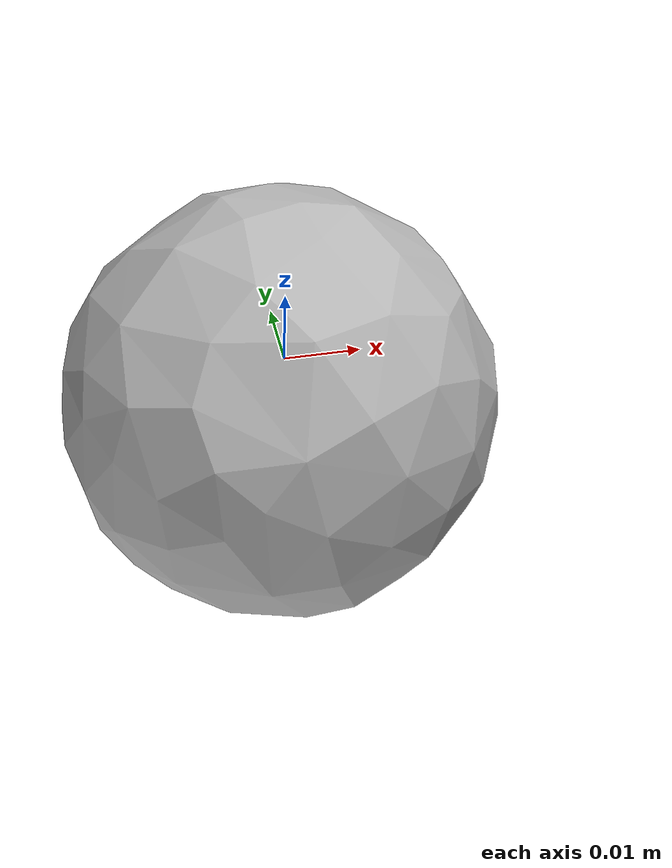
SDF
<?xml version='1.0'?>
<sdf version="1.4">
  <model name="058_golf_ball">
    <static>false</static>
    <link name="link">
      <inertial>
        <pose>-0.006527870138967517 -0.030417871146629655 0.020919760302993185 1.4213084432642404 -1.4739727578753072 -1.1494744095253178</pose>
        <mass>0.0040390786747539365</mass>
        <inertia>
          <ixx>7.335273886652802e-07</ixx>
          <ixy>-1.5328966710345608e-22</ixy>
          <ixz>-1.0322499959507604e-23</ixz>
          <iyy>7.314451912570301e-07</iyy>
          <iyz>5.157880863316209e-23</iyz>
          <izz>7.308785067591711e-07</izz>
        </inertia>
      </inertial>
      <collision name="collision">
        <geometry>
          <mesh>
            <!-- Use a downsampled mesh for collisions -->
            <uri>model:///058_golf_ball/058_golf_ball_250_collision.stl</uri>
	        </mesh>
        </geometry>
        <surface>
      </surface>
      </collision>
      <visual name="visual">
        <geometry>
          <mesh>
            <uri>model:///058_golf_ball/textured.obj</uri>
	        </mesh>
        </geometry>
        <material>
          <script>
            <uri>model:///058_golf_ball/058_golf_ball.material</uri>
            <name>058_golf_ball</name>
          </script>
        </material>
      </visual>
    </link>
  </model>
</sdf>
